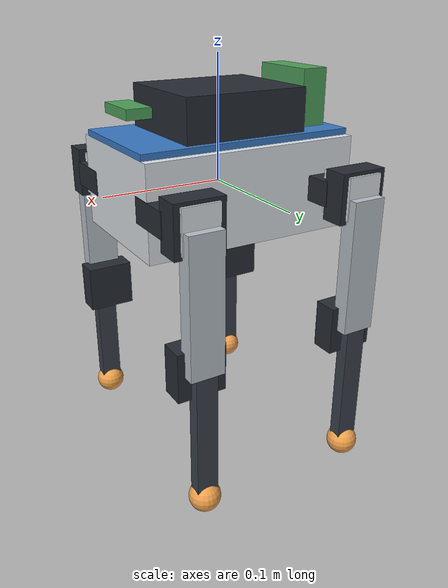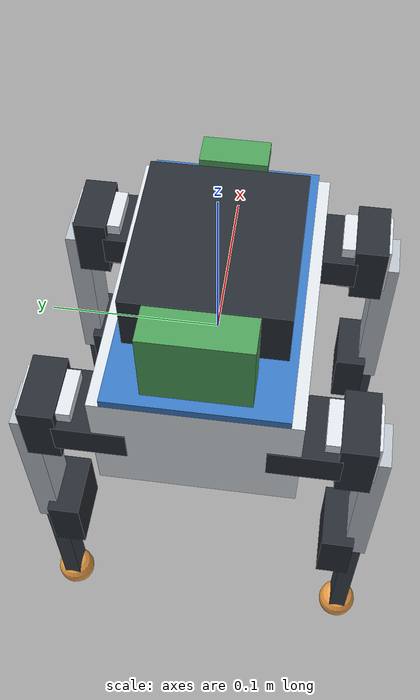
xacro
<robot name="spotmicro_ag" xmlns:xacro="http://www.ros.org/wiki/xacro">
  <material name="shell"><color rgba="0.86 0.88 0.90 1"/></material>
  <material name="servo"><color rgba="0.15 0.17 0.20 1"/></material>
  <material name="limb"><color rgba="0.72 0.75 0.78 1"/></material>
  <material name="shank"><color rgba="0.22 0.25 0.29 1"/></material>
  <material name="foot"><color rgba="0.94 0.63 0.29 1"/></material>
  <material name="deck"><color rgba="0.22 0.47 0.76 1"/></material>
  <material name="sensor"><color rgba="0.30 0.62 0.35 1"/></material>
  <link name="world"/>
  <joint name="world_rail" type="prismatic">
    <parent link="world"/><child link="base_link"/>
    <axis xyz="1 0 0"/>
    <limit lower="-40" upper="40" effort="1000" velocity="5"/>
    <dynamics damping="10.0" friction="0.01"/>
  </joint>
  <link name="base_link">
    <inertial><origin xyz="0 0 0.008000"/><mass value="1.00900"/>
      <inertia ixx="0.00155319" ixy="0" ixz="0" iyy="0.00318474" iyz="0" izz="0.00381705"/>
    </inertial>
    <visual><geometry><box size="0.18 0.114 0.074"/></geometry><material name="shell"/></visual>
    <collision><geometry><box size="0.18 0.114 0.074"/></geometry></collision>
  </link>
  <gazebo reference="base_link"><material>Gazebo/White</material></gazebo>
  <joint name="deck_joint" type="fixed"><parent link="base_link"/><child link="deck_link"/>
    <origin xyz="0 0 0.0395"/></joint>
  <link name="deck_link">
    <inertial><mass value="0.001"/><inertia ixx="1e-7" ixy="0" ixz="0" iyy="1e-7" iyz="0" izz="1e-7"/></inertial>
    <visual><geometry><box size="0.180 0.100 0.005"/></geometry><material name="deck"/></visual>
  </link>
  <gazebo reference="deck_link"><material>Gazebo/SkyBlue</material></gazebo>
  <joint name="jetson_joint" type="fixed"><parent link="deck_link"/><child link="jetson_link"/>
    <origin xyz="0 0 0.0195"/></joint>
  <link name="jetson_link">
    <inertial><mass value="0.001"/><inertia ixx="1e-7" ixy="0" ixz="0" iyy="1e-7" iyz="0" izz="1e-7"/></inertial>
    <visual><geometry><box size="0.103 0.090 0.034"/></geometry><material name="servo"/></visual>
  </link>
  <gazebo reference="jetson_link"><material>Gazebo/DarkGrey</material></gazebo>
  <joint name="ppd42_joint" type="fixed"><parent link="deck_link"/><child link="ppd42_link"/>
    <origin xyz="-0.072 0 0.0250"/></joint>
  <link name="ppd42_link">
    <inertial><mass value="0.001"/><inertia ixx="1e-7" ixy="0" ixz="0" iyy="1e-7" iyz="0" izz="1e-7"/></inertial>
    <visual><geometry><box size="0.022 0.059 0.045"/></geometry><material name="sensor"/></visual>
  </link>
  <gazebo reference="ppd42_link"><material>Gazebo/Green</material></gazebo>
  <joint name="sgp30_joint" type="fixed"><parent link="deck_link"/><child link="sgp30_link"/>
    <origin xyz="0.076 0 0.0235"/></joint>
  <link name="sgp30_link">
    <inertial><mass value="0.001"/><inertia ixx="1e-7" ixy="0" ixz="0" iyy="1e-7" iyz="0" izz="1e-7"/></inertial>
    <visual><geometry><box size="0.020 0.040 0.008"/></geometry><material name="sensor"/></visual>
  </link>
  <gazebo reference="sgp30_link"><material>Gazebo/Green</material></gazebo>
  <joint name="fl_abd_joint" type="revolute">
    <parent link="base_link"/><child link="fl_abd_link"/>
    <origin xyz="0.0700 0.0390 0"/><axis xyz="1 0 0"/>
    <limit lower="-0.70" upper="0.70" effort="1.08" velocity="8.0"/>
    <dynamics damping="0.10" friction="0.02"/>
  </joint>
  <link name="fl_abd_link">
    <inertial><origin xyz="0 0 0.000000"/><mass value="0.03000"/>
      <inertia ixx="0.00000800" ixy="0" ixz="0" iyy="0.00000800" iyz="0" izz="0.00000800"/>
    </inertial>
    <visual><origin xyz="0 0.0200 0"/>
      <geometry><box size="0.041 0.041 0.020"/></geometry><material name="servo"/></visual>
    <visual><origin xyz="0 0.0450 0"/>
      <geometry><box size="0.030 0.030 0.034"/></geometry><material name="shell"/></visual>
    <collision><origin xyz="0 0.0300 0"/>
      <geometry><box size="0.040 0.050 0.034"/></geometry></collision>
  </link>
  <joint name="fl_hip_joint" type="revolute">
    <parent link="fl_abd_link"/><child link="fl_femur_link"/>
    <origin xyz="0 0.0600 0"/><axis xyz="0 1 0"/>
    <limit lower="-1.60" upper="1.60" effort="1.08" velocity="8.0"/>
    <dynamics damping="0.10" friction="0.02"/>
  </joint>
  <link name="fl_femur_link">
    <inertial><origin xyz="0 0 -0.055500"/><mass value="0.13350"/>
      <inertia ixx="0.00013957" ixy="0" ixz="0" iyy="0.00014459" iyz="0" izz="0.00001002"/>
    </inertial>
    <visual><origin xyz="0 -0.0120 0"/>
      <geometry><box size="0.040 0.020 0.040"/></geometry><material name="servo"/></visual>
    <visual><origin xyz="0 0 -0.0555"/>
      <geometry><box size="0.028 0.014 0.1110"/></geometry><material name="limb"/></visual>
    <visual><origin xyz="0 -0.0120 -0.1110"/>
      <geometry><box size="0.040 0.020 0.040"/></geometry><material name="servo"/></visual>
    <collision><origin xyz="0 0 -0.0555"/>
      <geometry><box size="0.026 0.014 0.0910"/></geometry></collision>
  </link>
  <joint name="fl_knee_joint" type="revolute">
    <parent link="fl_femur_link"/><child link="fl_tibia_link"/>
    <origin xyz="0 0 -0.1110"/><axis xyz="0 1 0"/>
    <limit lower="-2.60" upper="0.0" effort="1.08" velocity="8.0"/>
    <dynamics damping="0.10" friction="0.02"/>
  </joint>
  <link name="fl_tibia_link">
    <inertial><origin xyz="0 0 -0.062500"/><mass value="0.02360"/>
      <inertia ixx="0.00003097" ixy="0" ixz="0" iyy="0.00003130" iyz="0" izz="0.00000081"/>
    </inertial>
    <visual><origin xyz="0 0 -0.0560"/>
      <geometry><box size="0.018 0.011 0.1120"/></geometry><material name="shank"/></visual>
    <collision><origin xyz="0 0 -0.0560"/>
      <geometry><box size="0.018 0.011 0.0950"/></geometry></collision>
  </link>
  <joint name="fl_foot_joint" type="fixed">
    <parent link="fl_tibia_link"/><child link="fl_foot_link"/>
    <origin xyz="0 0 -0.1120"/>
  </joint>
  <link name="fl_foot_link">
    <inertial><mass value="0.004"/>
      <inertia ixx="2e-7" ixy="0" ixz="0" iyy="2e-7" iyz="0" izz="2e-7"/></inertial>
    <visual><geometry><sphere radius="0.013"/></geometry><material name="foot"/></visual>
    <collision><geometry><sphere radius="0.013"/></geometry></collision>
  </link>
  <gazebo reference="fl_foot_link">
    <mu1>1.1</mu1><mu2>1.1</mu2><kp>2e5</kp><kd>15.0</kd>
    <minDepth>0.001</minDepth><maxVel>0.2</maxVel><material>Gazebo/Orange</material>
  </gazebo>
  <gazebo reference="fl_femur_link"><material>Gazebo/Grey</material></gazebo>
  <gazebo reference="fl_tibia_link"><material>Gazebo/DarkGrey</material></gazebo>
  <gazebo reference="fl_abd_link"><material>Gazebo/DarkGrey</material></gazebo>
  <joint name="fr_abd_joint" type="revolute">
    <parent link="base_link"/><child link="fr_abd_link"/>
    <origin xyz="0.0700 -0.0390 0"/><axis xyz="1 0 0"/>
    <limit lower="-0.70" upper="0.70" effort="1.08" velocity="8.0"/>
    <dynamics damping="0.10" friction="0.02"/>
  </joint>
  <link name="fr_abd_link">
    <inertial><origin xyz="0 0 0.000000"/><mass value="0.03000"/>
      <inertia ixx="0.00000800" ixy="0" ixz="0" iyy="0.00000800" iyz="0" izz="0.00000800"/>
    </inertial>
    <visual><origin xyz="0 -0.0200 0"/>
      <geometry><box size="0.041 0.041 0.020"/></geometry><material name="servo"/></visual>
    <visual><origin xyz="0 -0.0450 0"/>
      <geometry><box size="0.030 0.030 0.034"/></geometry><material name="shell"/></visual>
    <collision><origin xyz="0 -0.0300 0"/>
      <geometry><box size="0.040 0.050 0.034"/></geometry></collision>
  </link>
  <joint name="fr_hip_joint" type="revolute">
    <parent link="fr_abd_link"/><child link="fr_femur_link"/>
    <origin xyz="0 -0.0600 0"/><axis xyz="0 1 0"/>
    <limit lower="-1.60" upper="1.60" effort="1.08" velocity="8.0"/>
    <dynamics damping="0.10" friction="0.02"/>
  </joint>
  <link name="fr_femur_link">
    <inertial><origin xyz="0 0 -0.055500"/><mass value="0.13350"/>
      <inertia ixx="0.00013957" ixy="0" ixz="0" iyy="0.00014459" iyz="0" izz="0.00001002"/>
    </inertial>
    <visual><origin xyz="0 0.0120 0"/>
      <geometry><box size="0.040 0.020 0.040"/></geometry><material name="servo"/></visual>
    <visual><origin xyz="0 0 -0.0555"/>
      <geometry><box size="0.028 0.014 0.1110"/></geometry><material name="limb"/></visual>
    <visual><origin xyz="0 0.0120 -0.1110"/>
      <geometry><box size="0.040 0.020 0.040"/></geometry><material name="servo"/></visual>
    <collision><origin xyz="0 0 -0.0555"/>
      <geometry><box size="0.026 0.014 0.0910"/></geometry></collision>
  </link>
  <joint name="fr_knee_joint" type="revolute">
    <parent link="fr_femur_link"/><child link="fr_tibia_link"/>
    <origin xyz="0 0 -0.1110"/><axis xyz="0 1 0"/>
    <limit lower="-2.60" upper="0.0" effort="1.08" velocity="8.0"/>
    <dynamics damping="0.10" friction="0.02"/>
  </joint>
  <link name="fr_tibia_link">
    <inertial><origin xyz="0 0 -0.062500"/><mass value="0.02360"/>
      <inertia ixx="0.00003097" ixy="0" ixz="0" iyy="0.00003130" iyz="0" izz="0.00000081"/>
    </inertial>
    <visual><origin xyz="0 0 -0.0560"/>
      <geometry><box size="0.018 0.011 0.1120"/></geometry><material name="shank"/></visual>
    <collision><origin xyz="0 0 -0.0560"/>
      <geometry><box size="0.018 0.011 0.0950"/></geometry></collision>
  </link>
  <joint name="fr_foot_joint" type="fixed">
    <parent link="fr_tibia_link"/><child link="fr_foot_link"/>
    <origin xyz="0 0 -0.1120"/>
  </joint>
  <link name="fr_foot_link">
    <inertial><mass value="0.004"/>
      <inertia ixx="2e-7" ixy="0" ixz="0" iyy="2e-7" iyz="0" izz="2e-7"/></inertial>
    <visual><geometry><sphere radius="0.013"/></geometry><material name="foot"/></visual>
    <collision><geometry><sphere radius="0.013"/></geometry></collision>
  </link>
  <gazebo reference="fr_foot_link">
    <mu1>1.1</mu1><mu2>1.1</mu2><kp>2e5</kp><kd>15.0</kd>
    <minDepth>0.001</minDepth><maxVel>0.2</maxVel><material>Gazebo/Orange</material>
  </gazebo>
  <gazebo reference="fr_femur_link"><material>Gazebo/Grey</material></gazebo>
  <gazebo reference="fr_tibia_link"><material>Gazebo/DarkGrey</material></gazebo>
  <gazebo reference="fr_abd_link"><material>Gazebo/DarkGrey</material></gazebo>
  <joint name="rl_abd_joint" type="revolute">
    <parent link="base_link"/><child link="rl_abd_link"/>
    <origin xyz="-0.0700 0.0390 0"/><axis xyz="1 0 0"/>
    <limit lower="-0.70" upper="0.70" effort="1.08" velocity="8.0"/>
    <dynamics damping="0.10" friction="0.02"/>
  </joint>
  <link name="rl_abd_link">
    <inertial><origin xyz="0 0 0.000000"/><mass value="0.03000"/>
      <inertia ixx="0.00000800" ixy="0" ixz="0" iyy="0.00000800" iyz="0" izz="0.00000800"/>
    </inertial>
    <visual><origin xyz="0 0.0200 0"/>
      <geometry><box size="0.041 0.041 0.020"/></geometry><material name="servo"/></visual>
    <visual><origin xyz="0 0.0450 0"/>
      <geometry><box size="0.030 0.030 0.034"/></geometry><material name="shell"/></visual>
    <collision><origin xyz="0 0.0300 0"/>
      <geometry><box size="0.040 0.050 0.034"/></geometry></collision>
  </link>
  <joint name="rl_hip_joint" type="revolute">
    <parent link="rl_abd_link"/><child link="rl_femur_link"/>
    <origin xyz="0 0.0600 0"/><axis xyz="0 1 0"/>
    <limit lower="-1.60" upper="1.60" effort="1.08" velocity="8.0"/>
    <dynamics damping="0.10" friction="0.02"/>
  </joint>
  <link name="rl_femur_link">
    <inertial><origin xyz="0 0 -0.055500"/><mass value="0.13350"/>
      <inertia ixx="0.00013957" ixy="0" ixz="0" iyy="0.00014459" iyz="0" izz="0.00001002"/>
    </inertial>
    <visual><origin xyz="0 -0.0120 0"/>
      <geometry><box size="0.040 0.020 0.040"/></geometry><material name="servo"/></visual>
    <visual><origin xyz="0 0 -0.0555"/>
      <geometry><box size="0.028 0.014 0.1110"/></geometry><material name="limb"/></visual>
    <visual><origin xyz="0 -0.0120 -0.1110"/>
      <geometry><box size="0.040 0.020 0.040"/></geometry><material name="servo"/></visual>
    <collision><origin xyz="0 0 -0.0555"/>
      <geometry><box size="0.026 0.014 0.0910"/></geometry></collision>
  </link>
  <joint name="rl_knee_joint" type="revolute">
    <parent link="rl_femur_link"/><child link="rl_tibia_link"/>
    <origin xyz="0 0 -0.1110"/><axis xyz="0 1 0"/>
    <limit lower="-2.60" upper="0.0" effort="1.08" velocity="8.0"/>
    <dynamics damping="0.10" friction="0.02"/>
  </joint>
  <link name="rl_tibia_link">
    <inertial><origin xyz="0 0 -0.062500"/><mass value="0.02360"/>
      <inertia ixx="0.00003097" ixy="0" ixz="0" iyy="0.00003130" iyz="0" izz="0.00000081"/>
    </inertial>
    <visual><origin xyz="0 0 -0.0560"/>
      <geometry><box size="0.018 0.011 0.1120"/></geometry><material name="shank"/></visual>
    <collision><origin xyz="0 0 -0.0560"/>
      <geometry><box size="0.018 0.011 0.0950"/></geometry></collision>
  </link>
  <joint name="rl_foot_joint" type="fixed">
    <parent link="rl_tibia_link"/><child link="rl_foot_link"/>
    <origin xyz="0 0 -0.1120"/>
  </joint>
  <link name="rl_foot_link">
    <inertial><mass value="0.004"/>
      <inertia ixx="2e-7" ixy="0" ixz="0" iyy="2e-7" iyz="0" izz="2e-7"/></inertial>
    <visual><geometry><sphere radius="0.013"/></geometry><material name="foot"/></visual>
    <collision><geometry><sphere radius="0.013"/></geometry></collision>
  </link>
  <gazebo reference="rl_foot_link">
    <mu1>1.1</mu1><mu2>1.1</mu2><kp>2e5</kp><kd>15.0</kd>
    <minDepth>0.001</minDepth><maxVel>0.2</maxVel><material>Gazebo/Orange</material>
  </gazebo>
  <gazebo reference="rl_femur_link"><material>Gazebo/Grey</material></gazebo>
  <gazebo reference="rl_tibia_link"><material>Gazebo/DarkGrey</material></gazebo>
  <gazebo reference="rl_abd_link"><material>Gazebo/DarkGrey</material></gazebo>
  <joint name="rr_abd_joint" type="revolute">
    <parent link="base_link"/><child link="rr_abd_link"/>
    <origin xyz="-0.0700 -0.0390 0"/><axis xyz="1 0 0"/>
    <limit lower="-0.70" upper="0.70" effort="1.08" velocity="8.0"/>
    <dynamics damping="0.10" friction="0.02"/>
  </joint>
  <link name="rr_abd_link">
    <inertial><origin xyz="0 0 0.000000"/><mass value="0.03000"/>
      <inertia ixx="0.00000800" ixy="0" ixz="0" iyy="0.00000800" iyz="0" izz="0.00000800"/>
    </inertial>
    <visual><origin xyz="0 -0.0200 0"/>
      <geometry><box size="0.041 0.041 0.020"/></geometry><material name="servo"/></visual>
    <visual><origin xyz="0 -0.0450 0"/>
      <geometry><box size="0.030 0.030 0.034"/></geometry><material name="shell"/></visual>
    <collision><origin xyz="0 -0.0300 0"/>
      <geometry><box size="0.040 0.050 0.034"/></geometry></collision>
  </link>
  <joint name="rr_hip_joint" type="revolute">
    <parent link="rr_abd_link"/><child link="rr_femur_link"/>
    <origin xyz="0 -0.0600 0"/><axis xyz="0 1 0"/>
    <limit lower="-1.60" upper="1.60" effort="1.08" velocity="8.0"/>
    <dynamics damping="0.10" friction="0.02"/>
  </joint>
  <link name="rr_femur_link">
    <inertial><origin xyz="0 0 -0.055500"/><mass value="0.13350"/>
      <inertia ixx="0.00013957" ixy="0" ixz="0" iyy="0.00014459" iyz="0" izz="0.00001002"/>
    </inertial>
    <visual><origin xyz="0 0.0120 0"/>
      <geometry><box size="0.040 0.020 0.040"/></geometry><material name="servo"/></visual>
    <visual><origin xyz="0 0 -0.0555"/>
      <geometry><box size="0.028 0.014 0.1110"/></geometry><material name="limb"/></visual>
    <visual><origin xyz="0 0.0120 -0.1110"/>
      <geometry><box size="0.040 0.020 0.040"/></geometry><material name="servo"/></visual>
    <collision><origin xyz="0 0 -0.0555"/>
      <geometry><box size="0.026 0.014 0.0910"/></geometry></collision>
  </link>
  <joint name="rr_knee_joint" type="revolute">
    <parent link="rr_femur_link"/><child link="rr_tibia_link"/>
    <origin xyz="0 0 -0.1110"/><axis xyz="0 1 0"/>
    <limit lower="-2.60" upper="0.0" effort="1.08" velocity="8.0"/>
    <dynamics damping="0.10" friction="0.02"/>
  </joint>
  <link name="rr_tibia_link">
    <inertial><origin xyz="0 0 -0.062500"/><mass value="0.02360"/>
      <inertia ixx="0.00003097" ixy="0" ixz="0" iyy="0.00003130" iyz="0" izz="0.00000081"/>
    </inertial>
    <visual><origin xyz="0 0 -0.0560"/>
      <geometry><box size="0.018 0.011 0.1120"/></geometry><material name="shank"/></visual>
    <collision><origin xyz="0 0 -0.0560"/>
      <geometry><box size="0.018 0.011 0.0950"/></geometry></collision>
  </link>
  <joint name="rr_foot_joint" type="fixed">
    <parent link="rr_tibia_link"/><child link="rr_foot_link"/>
    <origin xyz="0 0 -0.1120"/>
  </joint>
  <link name="rr_foot_link">
    <inertial><mass value="0.004"/>
      <inertia ixx="2e-7" ixy="0" ixz="0" iyy="2e-7" iyz="0" izz="2e-7"/></inertial>
    <visual><geometry><sphere radius="0.013"/></geometry><material name="foot"/></visual>
    <collision><geometry><sphere radius="0.013"/></geometry></collision>
  </link>
  <gazebo reference="rr_foot_link">
    <mu1>1.1</mu1><mu2>1.1</mu2><kp>2e5</kp><kd>15.0</kd>
    <minDepth>0.001</minDepth><maxVel>0.2</maxVel><material>Gazebo/Orange</material>
  </gazebo>
  <gazebo reference="rr_femur_link"><material>Gazebo/Grey</material></gazebo>
  <gazebo reference="rr_tibia_link"><material>Gazebo/DarkGrey</material></gazebo>
  <gazebo reference="rr_abd_link"><material>Gazebo/DarkGrey</material></gazebo>
  <gazebo><self_collide>false</self_collide></gazebo>
  <gazebo reference="base_link">
    <sensor name="imu_sensor" type="imu">
      <always_on>true</always_on><update_rate>100</update_rate>
      <plugin filename="libgazebo_ros_imu_sensor.so" name="imu_plugin">
        <ros><remapping>~/out:=/imu/data</remapping></ros>
        <frame_name>base_link</frame_name>
      </plugin>
    </sensor>
  </gazebo>
  <ros2_control name="GazeboSystem" type="system">
    <hardware><plugin>gazebo_ros2_control/GazeboSystem</plugin></hardware>
    <joint name="fl_abd_joint">
      <command_interface name="effort"/>
      <state_interface name="position"/>
      <state_interface name="velocity"/>
      <state_interface name="effort"/>
    </joint>
    <joint name="fl_hip_joint">
      <command_interface name="effort"/>
      <state_interface name="position"/>
      <state_interface name="velocity"/>
      <state_interface name="effort"/>
    </joint>
    <joint name="fl_knee_joint">
      <command_interface name="effort"/>
      <state_interface name="position"/>
      <state_interface name="velocity"/>
      <state_interface name="effort"/>
    </joint>
    <joint name="fr_abd_joint">
      <command_interface name="effort"/>
      <state_interface name="position"/>
      <state_interface name="velocity"/>
      <state_interface name="effort"/>
    </joint>
    <joint name="fr_hip_joint">
      <command_interface name="effort"/>
      <state_interface name="position"/>
      <state_interface name="velocity"/>
      <state_interface name="effort"/>
    </joint>
    <joint name="fr_knee_joint">
      <command_interface name="effort"/>
      <state_interface name="position"/>
      <state_interface name="velocity"/>
      <state_interface name="effort"/>
    </joint>
    <joint name="rl_abd_joint">
      <command_interface name="effort"/>
      <state_interface name="position"/>
      <state_interface name="velocity"/>
      <state_interface name="effort"/>
    </joint>
    <joint name="rl_hip_joint">
      <command_interface name="effort"/>
      <state_interface name="position"/>
      <state_interface name="velocity"/>
      <state_interface name="effort"/>
    </joint>
    <joint name="rl_knee_joint">
      <command_interface name="effort"/>
      <state_interface name="position"/>
      <state_interface name="velocity"/>
      <state_interface name="effort"/>
    </joint>
    <joint name="rr_abd_joint">
      <command_interface name="effort"/>
      <state_interface name="position"/>
      <state_interface name="velocity"/>
      <state_interface name="effort"/>
    </joint>
    <joint name="rr_hip_joint">
      <command_interface name="effort"/>
      <state_interface name="position"/>
      <state_interface name="velocity"/>
      <state_interface name="effort"/>
    </joint>
    <joint name="rr_knee_joint">
      <command_interface name="effort"/>
      <state_interface name="position"/>
      <state_interface name="velocity"/>
      <state_interface name="effort"/>
    </joint>
  </ros2_control>
  <gazebo>
    <plugin filename="libgazebo_ros2_control.so" name="gazebo_ros2_control">
      <parameters>$(find spotmicro_ag_sim)/config/controllers.yaml</parameters>
    </plugin>
  </gazebo>
</robot>
